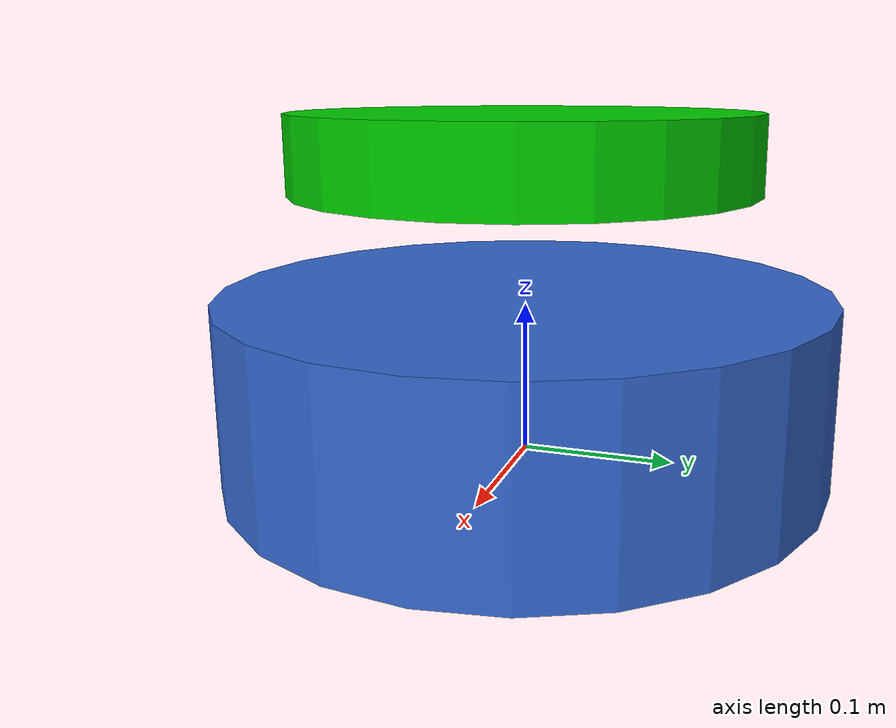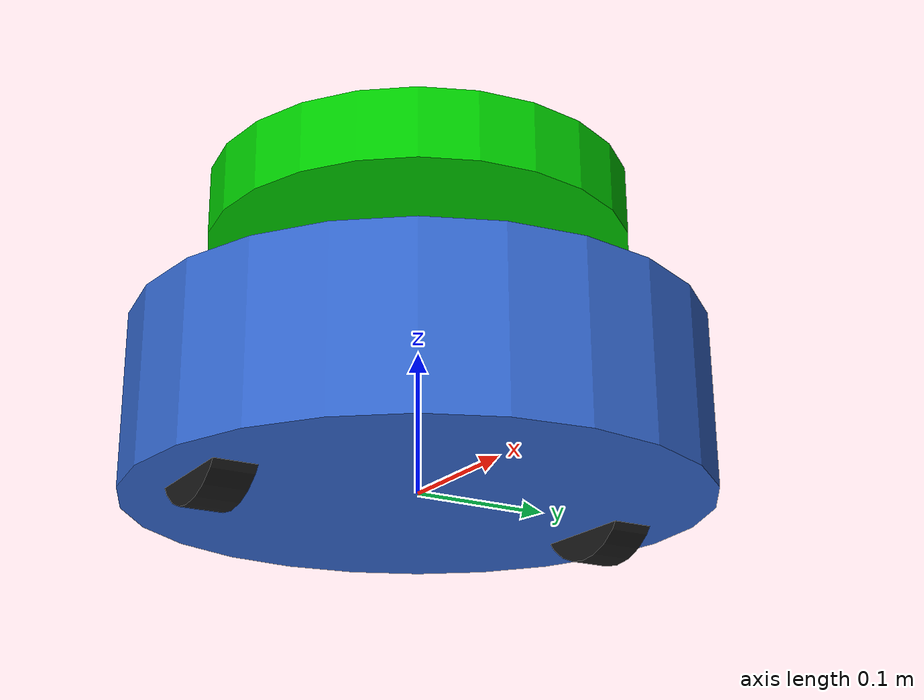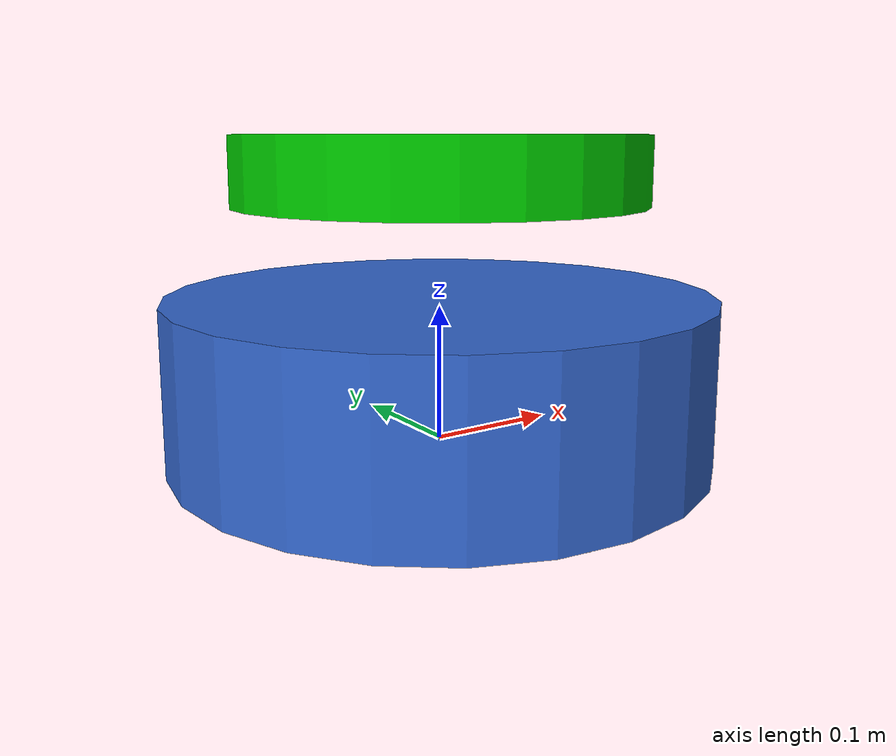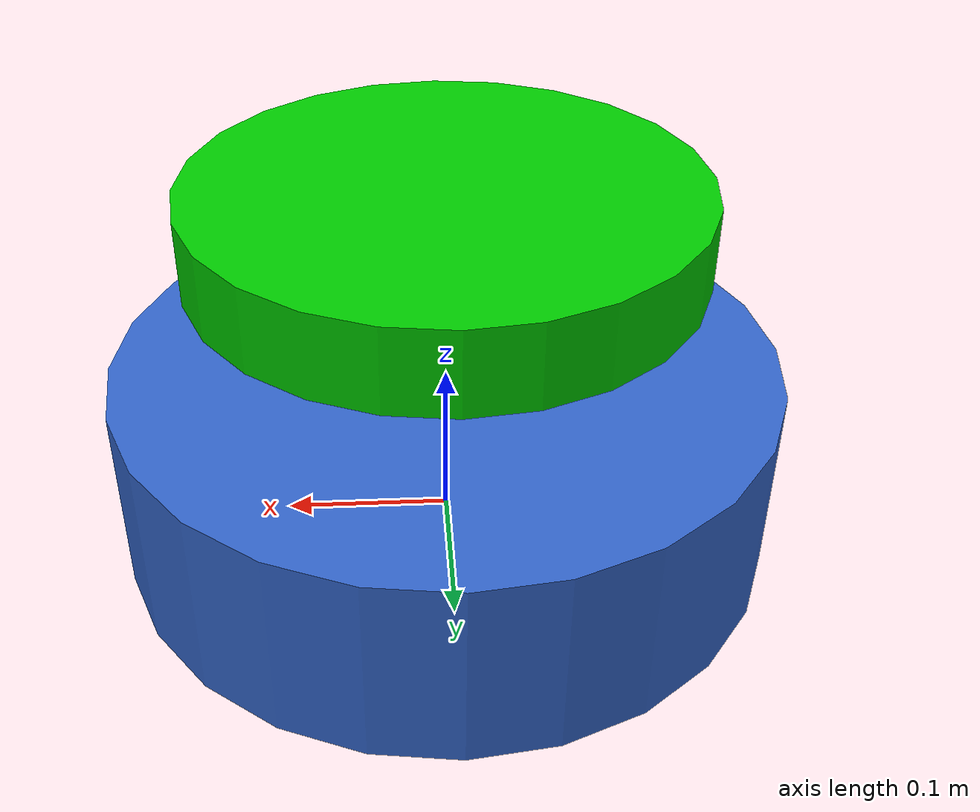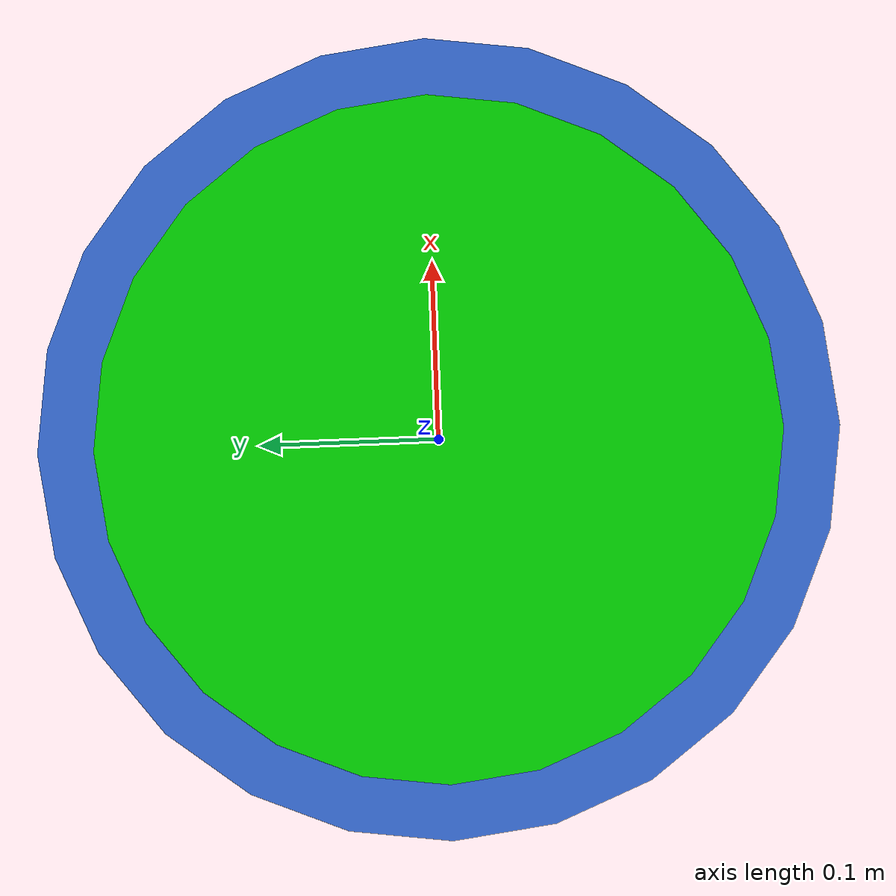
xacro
<?xml version="1.0"?>
<robot name="arbotrix_bot" xmlns:xacro="http://www.ros.org/wiki/xacro">

    <xacro:property name="base_radius" value="0.20"/>
    <xacro:property name="base_length" value="0.12"/>
    <xacro:property name="wheel_radius" value="0.05"/>
    <xacro:property name="wheel_width" value="0.03"/>
    <xacro:property name="wheel_separation" value="0.30"/>

    <link name="base_footprint"/>

    <joint name="base_joint" type="fixed">
        <parent link="base_footprint"/>
        <child link="base_link"/>
        <origin xyz="0 0 ${wheel_radius}" rpy="0 0 0"/>
    </joint>

    <link name="base_link">
        <visual>
            <geometry>
                <cylinder radius="${base_radius}" length="${base_length}"/>
            </geometry>
            <material name="blue">
                <color rgba="0.2 0.4 0.8 1.0"/>
            </material>
        </visual>

        <collision>
            <geometry>
                <cylinder radius="${base_radius}" length="${base_length}"/>
            </geometry>
        </collision>

        <inertial>
            <mass value="5.0"/>
            <inertia ixx="0.05" ixy="0" ixz="0"
                     iyy="0.05" iyz="0"
                     izz="0.08"/>
        </inertial>
    </link>

    <xacro:macro name="wheel" params="prefix y_reflect">

        <link name="${prefix}_wheel_link">

            <visual>
                <origin xyz="0 0 0" rpy="1.5708 0 0"/>
                <geometry>
                    <cylinder radius="${wheel_radius}"
                              length="${wheel_width}"/>
                </geometry>

                <material name="black">
                    <color rgba="0.1 0.1 0.1 1.0"/>
                </material>
            </visual>

            <collision>
                <origin xyz="0 0 0" rpy="1.5708 0 0"/>
                <geometry>
                    <cylinder radius="${wheel_radius}"
                              length="${wheel_width}"/>
                </geometry>
            </collision>

            <inertial>
                <mass value="0.5"/>
                <inertia ixx="0.001" ixy="0" ixz="0"
                         iyy="0.001" iyz="0"
                         izz="0.001"/>
            </inertial>

        </link>

        <joint name="${prefix}_wheel_joint" type="continuous">

            <parent link="base_link"/>
            <child link="${prefix}_wheel_link"/>

            <origin xyz="0 ${y_reflect * wheel_separation / 2} -${wheel_radius - 0.02}"
                    rpy="0 0 0"/>

            <axis xyz="0 1 0"/>

        </joint>

    </xacro:macro>

    <xacro:wheel prefix="left" y_reflect="1"/>
    <xacro:wheel prefix="right" y_reflect="-1"/>

    <link name="caster_wheel_link">

        <visual>
            <geometry>
                <sphere radius="0.025"/>
            </geometry>
        </visual>

        <collision>
            <geometry>
                <sphere radius="0.025"/>
            </geometry>
        </collision>

        <inertial>
            <mass value="0.1"/>
            <inertia ixx="0.0001" ixy="0" ixz="0"
                     iyy="0.0001" iyz="0"
                     izz="0.0001"/>
        </inertial>

    </link>

    <joint name="caster_joint" type="fixed">

        <parent link="base_link"/>
        <child link="caster_wheel_link"/>

        <origin xyz="0.15 0 -${wheel_radius - 0.025}"
                rpy="0 0 0"/>

    </joint>

    <!-- Second deck -->

    <link name="upper_deck">

        <visual>
            <geometry>
                <cylinder radius="0.15" length="0.05"/>
            </geometry>

            <material name="green">
                <color rgba="0.0 0.8 0.0 1.0"/>
            </material>
        </visual>

        <collision>
            <geometry>
                <cylinder radius="0.15" length="0.05"/>
            </geometry>
        </collision>

        <inertial>
            <mass value="1.0"/>

            <inertia ixx="0.01" ixy="0" ixz="0"
                     iyy="0.01" iyz="0"
                     izz="0.01"/>
        </inertial>

    </link>

    <joint name="upper_deck_joint" type="fixed">

        <parent link="base_link"/>
        <child link="upper_deck"/>

        <origin xyz="0 0 0.15" rpy="0 0 0"/>

    </joint>

<gazebo>
    <plugin name="diff_drive"
            filename="libgazebo_ros_diff_drive.so">

        <ros>
            <namespace>/</namespace>
        </ros>

        <update_rate>30</update_rate>

        <left_joint>left_wheel_joint</left_joint>
        <right_joint>right_wheel_joint</right_joint>

        <wheel_separation>0.30</wheel_separation>
        <wheel_diameter>0.10</wheel_diameter>

        <max_wheel_torque>20</max_wheel_torque>
        <max_wheel_acceleration>1.0</max_wheel_acceleration>

        <command_topic>cmd_vel</command_topic>

        <publish_odom>true</publish_odom>
        <publish_odom_tf>true</publish_odom_tf>
        <publish_wheel_tf>true</publish_wheel_tf>

        <odometry_topic>odom</odometry_topic>
        <odometry_frame>odom</odometry_frame>
        <robot_base_frame>base_footprint</robot_base_frame>

    </plugin>
</gazebo>

</robot>
